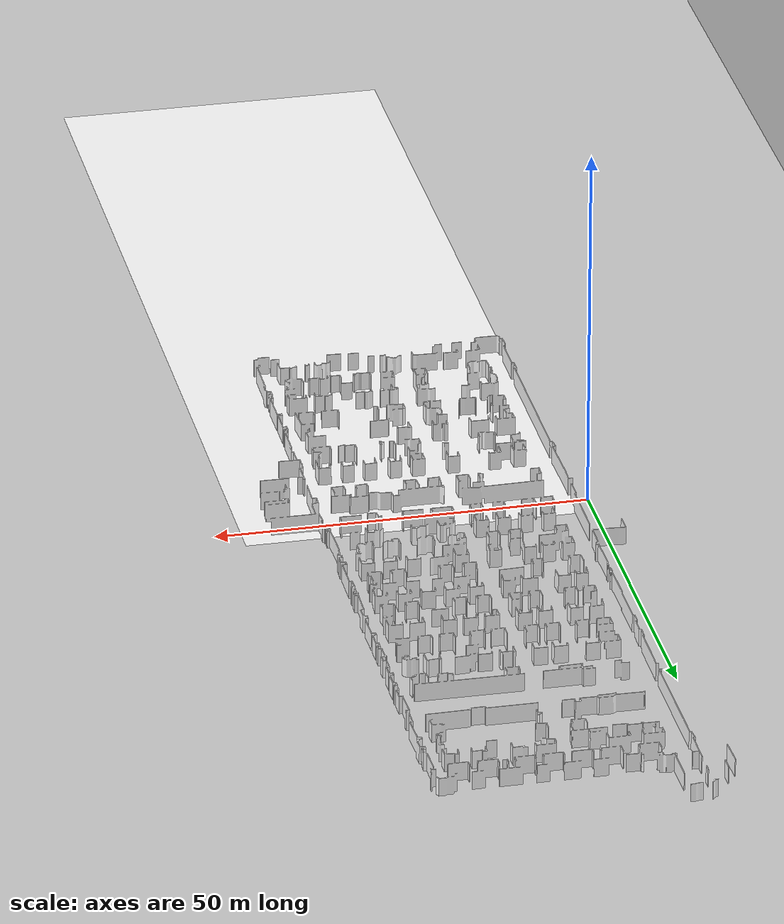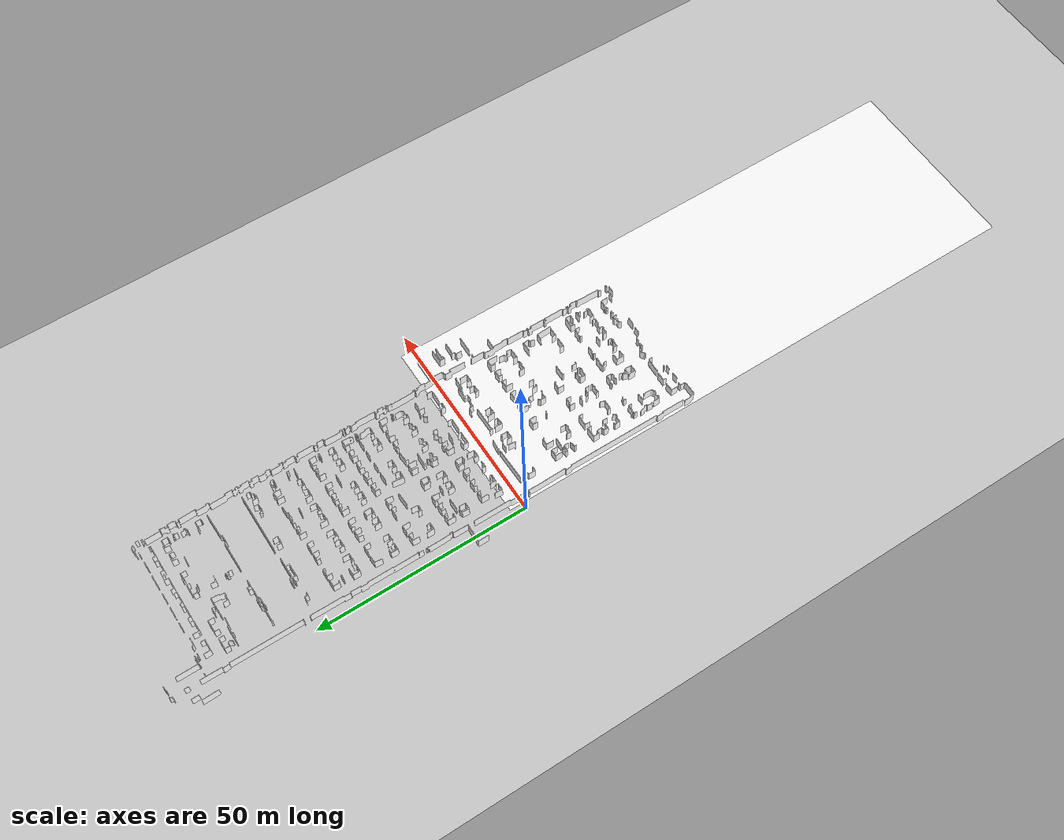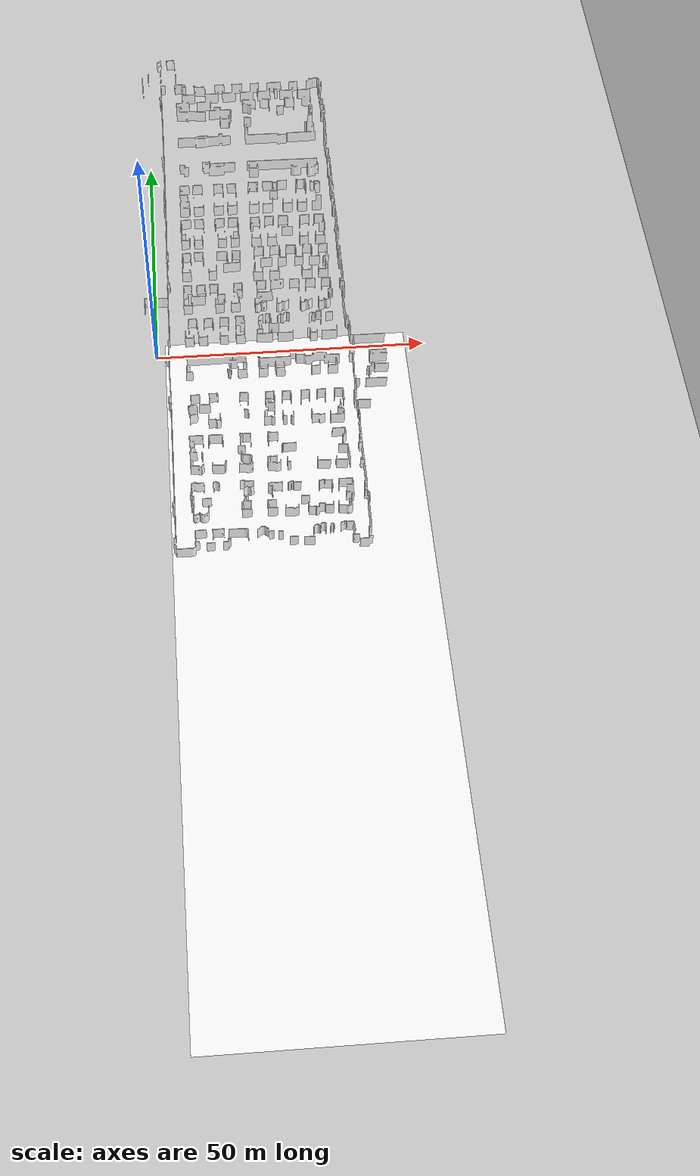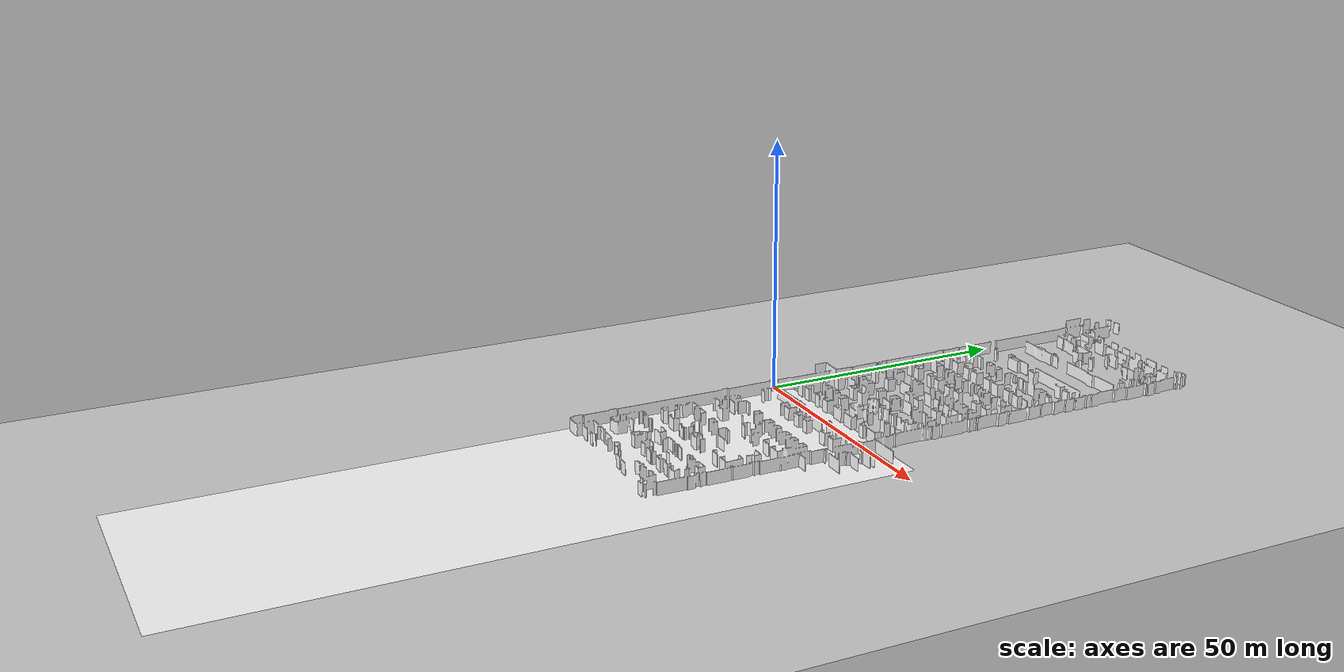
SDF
<sdf version="1.7">
 <world name="default">
  <light name="sun" type="directional">
   <pose>0 0 10 0 -0 0</pose>
   <diffuse>0.8 0.8 0.8 1</diffuse>
   <specular>0.2 0.2 0.2 1</specular>
   <attenuation>
    <range>1000</range>
    <constant>0.9</constant>
    <linear>0.01</linear>
    <quadratic>0.001</quadratic>
   </attenuation>
   <direction>-0.5 0.1 -0.9</direction>
   <spot><inner_angle>0</inner_angle><outer_angle>0</outer_angle><falloff>0</falloff></spot>
  </light>
  <model name="ground_plane">
   <static>1</static>
   <link name="link">
    <collision name="collision">
     <geometry><plane><normal>0 0 1</normal><size>100 100</size></plane></geometry>
     <surface>
      <contact><collide_bitmask>65535</collide_bitmask></contact>
      <friction><ode><mu>100</mu><mu2>50</mu2></ode></friction>
     </surface>
    </collision>
    <visual name="visual">
     <cast_shadows>0</cast_shadows>
     <geometry><plane><normal>0 0 1</normal><size>100 100</size></plane></geometry>
     <material>
      <script><uri>file://media/materials/scripts/gazebo.material</uri><name>Gazebo/Grey</name></script>
     </material>
    </visual>
   </link>
  </model>
  <gravity>0 0 -9.8</gravity>
  <magnetic_field>6e-06 2.3e-05 -4.2e-05</magnetic_field>
  <atmosphere type="adiabatic"/>
  <physics type="ode">
   <max_step_size>0.001</max_step_size>
   <real_time_factor>1</real_time_factor>
   <real_time_update_rate>1000</real_time_update_rate>
  </physics>
  <scene><ambient>0.4 0.4 0.4 1</ambient><background>0.7 0.7 0.7 1</background><shadows>1</shadows></scene>
  <spherical_coordinates>
   <surface_model>EARTH_WGS84</surface_model>
   <latitude_deg>0</latitude_deg>
   <longitude_deg>0</longitude_deg>
   <elevation>0</elevation>
   <heading_deg>0</heading_deg>
  </spherical_coordinates>
  <model name="RG371_L1">
   <static>1</static>
   <link name="floor_1">
    <visual name="visual">
     <geometry><mesh><uri>model://RG371_L1/meshes/floor_1.obj</uri></mesh></geometry>
     <material>
      <diffuse>1 1 1 1</diffuse>
      <specular>0.1 0.1 0.1 1</specular>
      <pbr>
       <metal><metalness>0.0</metalness><albedo_map>model://RG371_L1/meshes/blue_linoleum.png</albedo_map></metal>
      </pbr>
      <script><uri>model://RG371_L1/meshes/</uri><name>floor_1_Diffuse</name></script>
     </material>
    </visual>
    <collision name="collision">
     <geometry><mesh><uri>model://RG371_L1/meshes/floor_1.obj</uri></mesh></geometry>
     <surface><contact><collide_bitmask>1</collide_bitmask></contact></surface>
    </collision>
   </link>
   <link name="wall_1">
    <visual name="wall_1">
     <geometry><mesh><uri>model://RG371_L1/meshes/wall_1.obj</uri></mesh></geometry>
     <material>
      <diffuse>1 1 1 1</diffuse>
      <specular>0.1 0.1 0.1 1</specular>
      <pbr>
       <metal><metalness>0.0</metalness><albedo_map>model://RG371_L1/meshes/default.png</albedo_map></metal>
      </pbr>
      <script><uri>model://RG371_L1/meshes/</uri><name>wall_1_Diffuse</name></script>
     </material>
    </visual>
    <collision name="collision">
     <geometry><mesh><uri>model://RG371_L1/meshes/wall_1.obj</uri></mesh></geometry>
     <surface><contact><collide_bitmask>1</collide_bitmask></contact></surface>
    </collision>
    <pose>1.46693 -47.8404 0 0 -0 0</pose>
   </link>
   <pose>-3.54438 3.02545 0 0 -0 0</pose>
  </model>
 </world>
</sdf>
